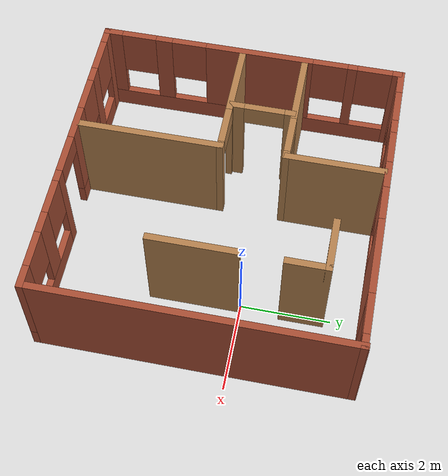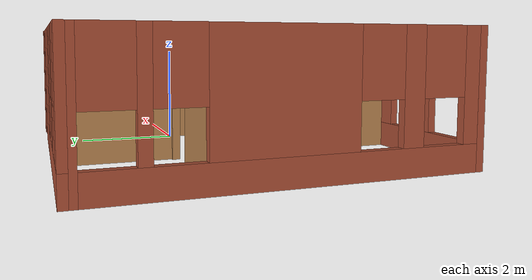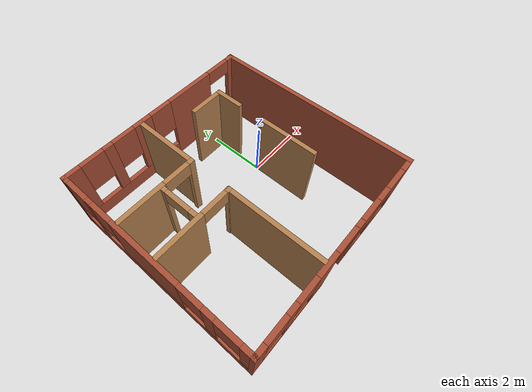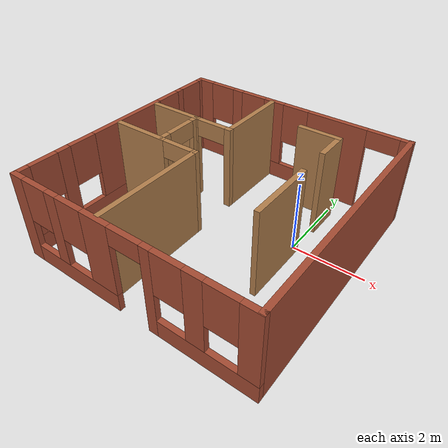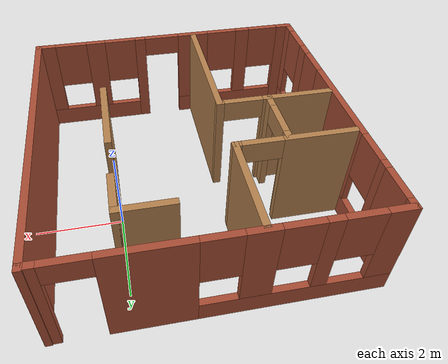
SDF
<?xml version='1.0'?>
<sdf version='1.6'>
  <model name='Building'>
    <pose frame=''>-1.78266 -0.732345 0 0 -0 0</pose>
    <link name='Wall_3'>
      <pose frame=''>0 -3.43506 0 0 -0 0</pose>
      <visual name='Wall_3_Visual_0'>
        <pose frame=''>-3.27601 0 1.25 0 -0 0</pose>
        <geometry>
          <box>
            <size>0.428142 0.15 2.5</size>
          </box>
        </geometry>
        <material>
          <script>
            <uri>file://media/materials/scripts/gazebo.material</uri>
            <name>Gazebo/Bricks</name>
          </script>
          <ambient>1 1 1 1</ambient>
        </material>
        <meta>
          <layer>0</layer>
        </meta>
      </visual>
      <collision name='Wall_3_Collision_0'>
        <geometry>
          <box>
            <size>0.428142 0.15 2.5</size>
          </box>
        </geometry>
        <pose frame=''>-3.27601 0 1.25 0 -0 0</pose>
      </collision>
      <visual name='Wall_3_Visual_1'>
        <pose frame=''>0.759822 0 1.25 0 -0 0</pose>
        <geometry>
          <box>
            <size>0.272143 0.15 2.5</size>
          </box>
        </geometry>
        <material>
          <script>
            <uri>file://media/materials/scripts/gazebo.material</uri>
            <name>Gazebo/Bricks</name>
          </script>
          <ambient>1 1 1 1</ambient>
        </material>
        <meta>
          <layer>0</layer>
        </meta>
      </visual>
      <collision name='Wall_3_Collision_1'>
        <geometry>
          <box>
            <size>0.272143 0.15 2.5</size>
          </box>
        </geometry>
        <pose frame=''>0.759822 0 1.25 0 -0 0</pose>
      </collision>
      <visual name='Wall_3_Visual_2'>
        <pose frame=''>-1.66909 0 0.25 0 -0 0</pose>
        <geometry>
          <box>
            <size>2.78568 0.15 0.5</size>
          </box>
        </geometry>
        <material>
          <script>
            <uri>file://media/materials/scripts/gazebo.material</uri>
            <name>Gazebo/Bricks</name>
          </script>
          <ambient>1 1 1 1</ambient>
        </material>
        <meta>
          <layer>0</layer>
        </meta>
      </visual>
      <collision name='Wall_3_Collision_2'>
        <geometry>
          <box>
            <size>2.78568 0.15 0.5</size>
          </box>
        </geometry>
        <pose frame=''>-1.66909 0 0.25 0 -0 0</pose>
      </collision>
      <visual name='Wall_3_Visual_3'>
        <pose frame=''>2.19299 0 0.25 0 -0 0</pose>
        <geometry>
          <box>
            <size>2.59418 0.15 0.5</size>
          </box>
        </geometry>
        <material>
          <script>
            <uri>file://media/materials/scripts/gazebo.material</uri>
            <name>Gazebo/Bricks</name>
          </script>
          <ambient>1 1 1 1</ambient>
        </material>
        <meta>
          <layer>0</layer>
        </meta>
      </visual>
      <collision name='Wall_3_Collision_3'>
        <geometry>
          <box>
            <size>2.59418 0.15 0.5</size>
          </box>
        </geometry>
        <pose frame=''>2.19299 0 0.25 0 -0 0</pose>
      </collision>
      <visual name='Wall_3_Visual_4'>
        <pose frame=''>-2.07812 0 1.5 0 -0 0</pose>
        <geometry>
          <box>
            <size>0.367635 0.15 2</size>
          </box>
        </geometry>
        <material>
          <script>
            <uri>file://media/materials/scripts/gazebo.material</uri>
            <name>Gazebo/Bricks</name>
          </script>
          <ambient>1 1 1 1</ambient>
        </material>
        <meta>
          <layer>0</layer>
        </meta>
      </visual>
      <collision name='Wall_3_Collision_4'>
        <geometry>
          <box>
            <size>0.367635 0.15 2</size>
          </box>
        </geometry>
        <pose frame=''>-2.07812 0 1.5 0 -0 0</pose>
      </collision>
      <visual name='Wall_3_Visual_5'>
        <pose frame=''>-0.685274 0 1.5 0 -0 0</pose>
        <geometry>
          <box>
            <size>0.81805 0.15 2</size>
          </box>
        </geometry>
        <material>
          <script>
            <uri>file://media/materials/scripts/gazebo.material</uri>
            <name>Gazebo/Bricks</name>
          </script>
          <ambient>1 1 1 1</ambient>
        </material>
        <meta>
          <layer>0</layer>
        </meta>
      </visual>
      <collision name='Wall_3_Collision_5'>
        <geometry>
          <box>
            <size>0.81805 0.15 2</size>
          </box>
        </geometry>
        <pose frame=''>-0.685274 0 1.5 0 -0 0</pose>
      </collision>
      <visual name='Wall_3_Visual_6'>
        <pose frame=''>-0.685274 0 1.5 0 -0 0</pose>
        <geometry>
          <box>
            <size>0.81805 0.15 2</size>
          </box>
        </geometry>
        <material>
          <script>
            <uri>file://media/materials/scripts/gazebo.material</uri>
            <name>Gazebo/Bricks</name>
          </script>
          <ambient>1 1 1 1</ambient>
        </material>
        <meta>
          <layer>0</layer>
        </meta>
      </visual>
      <collision name='Wall_3_Collision_6'>
        <geometry>
          <box>
            <size>0.81805 0.15 2</size>
          </box>
        </geometry>
        <pose frame=''>-0.685274 0 1.5 0 -0 0</pose>
      </collision>
      <visual name='Wall_3_Visual_7'>
        <pose frame=''>1.94037 0 1.5 0 -0 0</pose>
        <geometry>
          <box>
            <size>0.488948 0.15 2</size>
          </box>
        </geometry>
        <material>
          <script>
            <uri>file://media/materials/scripts/gazebo.material</uri>
            <name>Gazebo/Bricks</name>
          </script>
          <ambient>1 1 1 1</ambient>
        </material>
        <meta>
          <layer>0</layer>
        </meta>
      </visual>
      <collision name='Wall_3_Collision_7'>
        <geometry>
          <box>
            <size>0.488948 0.15 2</size>
          </box>
        </geometry>
        <pose frame=''>1.94037 0 1.5 0 -0 0</pose>
      </collision>
      <visual name='Wall_3_Visual_8'>
        <pose frame=''>3.23746 0 1.5 0 -0 0</pose>
        <geometry>
          <box>
            <size>0.505235 0.15 2</size>
          </box>
        </geometry>
        <material>
          <script>
            <uri>file://media/materials/scripts/gazebo.material</uri>
            <name>Gazebo/Bricks</name>
          </script>
          <ambient>1 1 1 1</ambient>
        </material>
        <meta>
          <layer>0</layer>
        </meta>
      </visual>
      <collision name='Wall_3_Collision_8'>
        <geometry>
          <box>
            <size>0.505235 0.15 2</size>
          </box>
        </geometry>
        <pose frame=''>3.23746 0 1.5 0 -0 0</pose>
      </collision>
      <visual name='Wall_3_Visual_9'>
        <pose frame=''>-2.66193 0 1.9 0 -0 0</pose>
        <geometry>
          <box>
            <size>0.8 0.15 1.2</size>
          </box>
        </geometry>
        <material>
          <script>
            <uri>file://media/materials/scripts/gazebo.material</uri>
            <name>Gazebo/Bricks</name>
          </script>
          <ambient>1 1 1 1</ambient>
        </material>
        <meta>
          <layer>0</layer>
        </meta>
      </visual>
      <collision name='Wall_3_Collision_9'>
        <geometry>
          <box>
            <size>0.8 0.15 1.2</size>
          </box>
        </geometry>
        <pose frame=''>-2.66193 0 1.9 0 -0 0</pose>
      </collision>
      <visual name='Wall_3_Visual_10'>
        <pose frame=''>1.29589 0 1.9 0 -0 0</pose>
        <geometry>
          <box>
            <size>0.8 0.15 1.2</size>
          </box>
        </geometry>
        <material>
          <script>
            <uri>file://media/materials/scripts/gazebo.material</uri>
            <name>Gazebo/Bricks</name>
          </script>
          <ambient>1 1 1 1</ambient>
        </material>
        <meta>
          <layer>0</layer>
        </meta>
      </visual>
      <collision name='Wall_3_Collision_10'>
        <geometry>
          <box>
            <size>0.8 0.15 1.2</size>
          </box>
        </geometry>
        <pose frame=''>1.29589 0 1.9 0 -0 0</pose>
      </collision>
      <visual name='Wall_3_Visual_11'>
        <pose frame=''>-1.4943 0 1.9 0 -0 0</pose>
        <geometry>
          <box>
            <size>0.8 0.15 1.2</size>
          </box>
        </geometry>
        <material>
          <script>
            <uri>file://media/materials/scripts/gazebo.material</uri>
            <name>Gazebo/Bricks</name>
          </script>
          <ambient>1 1 1 1</ambient>
        </material>
        <meta>
          <layer>0</layer>
        </meta>
      </visual>
      <collision name='Wall_3_Collision_11'>
        <geometry>
          <box>
            <size>0.8 0.15 1.2</size>
          </box>
        </geometry>
        <pose frame=''>-1.4943 0 1.9 0 -0 0</pose>
      </collision>
      <visual name='Wall_3_Visual_12'>
        <pose frame=''>2.58484 0 1.9 0 -0 0</pose>
        <geometry>
          <box>
            <size>0.8 0.15 1.2</size>
          </box>
        </geometry>
        <material>
          <script>
            <uri>file://media/materials/scripts/gazebo.material</uri>
            <name>Gazebo/Bricks</name>
          </script>
          <ambient>1 1 1 1</ambient>
        </material>
        <meta>
          <layer>0</layer>
        </meta>
      </visual>
      <collision name='Wall_3_Collision_12'>
        <geometry>
          <box>
            <size>0.8 0.15 1.2</size>
          </box>
        </geometry>
        <pose frame=''>2.58484 0 1.9 0 -0 0</pose>
      </collision>
      <visual name='Wall_3_Visual_13'>
        <pose frame=''>0.173751 0 2.25 0 -0 0</pose>
        <geometry>
          <box>
            <size>0.9 0.15 0.5</size>
          </box>
        </geometry>
        <material>
          <script>
            <uri>file://media/materials/scripts/gazebo.material</uri>
            <name>Gazebo/Bricks</name>
          </script>
          <ambient>1 1 1 1</ambient>
        </material>
        <meta>
          <layer>0</layer>
        </meta>
      </visual>
      <collision name='Wall_3_Collision_13'>
        <geometry>
          <box>
            <size>0.9 0.15 0.5</size>
          </box>
        </geometry>
        <pose frame=''>0.173751 0 2.25 0 -0 0</pose>
      </collision>
      <visual name='Wall_3_Visual_14'>
        <pose frame=''>0.173751 0 2.25 0 -0 0</pose>
        <geometry>
          <box>
            <size>0.9 0.15 0.5</size>
          </box>
        </geometry>
        <material>
          <script>
            <uri>file://media/materials/scripts/gazebo.material</uri>
            <name>Gazebo/Bricks</name>
          </script>
          <ambient>1 1 1 1</ambient>
        </material>
        <meta>
          <layer>0</layer>
        </meta>
      </visual>
      <collision name='Wall_3_Collision_14'>
        <geometry>
          <box>
            <size>0.9 0.15 0.5</size>
          </box>
        </geometry>
        <pose frame=''>0.173751 0 2.25 0 -0 0</pose>
      </collision>
    </link>
    <link name='Wall_5'>
      <collision name='Wall_5_Collision'>
        <geometry>
          <box>
            <size>7 0.15 2.5</size>
          </box>
        </geometry>
        <pose frame=''>0 0 1.25 0 -0 0</pose>
      </collision>
      <visual name='Wall_5_Visual'>
        <pose frame=''>0 0 1.25 0 -0 0</pose>
        <geometry>
          <box>
            <size>7 0.15 2.5</size>
          </box>
        </geometry>
        <material>
          <script>
            <uri>file://media/materials/scripts/gazebo.material</uri>
            <name>Gazebo/Bricks</name>
          </script>
          <ambient>1 1 1 1</ambient>
        </material>
        <meta>
          <layer>0</layer>
        </meta>
      </visual>
      <pose frame=''>3.41494 0.010057 0 0 -0 1.5708</pose>
    </link>
    <link name='Wall_56'>
      <pose frame=''>-1.98711 1.22189 0 0 -0 3.14159</pose>
      <visual name='Wall_56_Visual_0'>
        <pose frame=''>-1.2734 0 1.25 0 -0 0</pose>
        <geometry>
          <box>
            <size>0.203204 0.15 2.5</size>
          </box>
        </geometry>
        <material>
          <script>
            <uri>file://media/materials/scripts/gazebo.material</uri>
            <name>Gazebo/Wood</name>
          </script>
          <ambient>1 1 1 1</ambient>
        </material>
        <meta>
          <layer>0</layer>
        </meta>
      </visual>
      <collision name='Wall_56_Collision_0'>
        <geometry>
          <box>
            <size>0.203204 0.15 2.5</size>
          </box>
        </geometry>
        <pose frame=''>-1.2734 0 1.25 0 -0 0</pose>
      </collision>
      <visual name='Wall_56_Visual_1'>
        <pose frame=''>0.551602 0 1.25 0 -0 0</pose>
        <geometry>
          <box>
            <size>1.6468 0.15 2.5</size>
          </box>
        </geometry>
        <material>
          <script>
            <uri>file://media/materials/scripts/gazebo.material</uri>
            <name>Gazebo/Wood</name>
          </script>
          <ambient>1 1 1 1</ambient>
        </material>
        <meta>
          <layer>0</layer>
        </meta>
      </visual>
      <collision name='Wall_56_Collision_1'>
        <geometry>
          <box>
            <size>1.6468 0.15 2.5</size>
          </box>
        </geometry>
        <pose frame=''>0.551602 0 1.25 0 -0 0</pose>
      </collision>
      <visual name='Wall_56_Visual_2'>
        <pose frame=''>-0.721796 0 2.25 0 -0 0</pose>
        <geometry>
          <box>
            <size>0.9 0.15 0.5</size>
          </box>
        </geometry>
        <material>
          <script>
            <uri>file://media/materials/scripts/gazebo.material</uri>
            <name>Gazebo/Wood</name>
          </script>
          <ambient>1 1 1 1</ambient>
        </material>
        <meta>
          <layer>0</layer>
        </meta>
      </visual>
      <collision name='Wall_56_Collision_2'>
        <geometry>
          <box>
            <size>0.9 0.15 0.5</size>
          </box>
        </geometry>
        <pose frame=''>-0.721796 0 2.25 0 -0 0</pose>
      </collision>
    </link>
    <link name='Wall_58'>
      <collision name='Wall_58_Collision'>
        <geometry>
          <box>
            <size>3.25 0.15 2.5</size>
          </box>
        </geometry>
        <pose frame=''>0 0 1.25 0 -0 0</pose>
      </collision>
      <visual name='Wall_58_Visual'>
        <pose frame=''>0 0 1.25 0 -0 0</pose>
        <geometry>
          <box>
            <size>3.25 0.15 2.5</size>
          </box>
        </geometry>
        <material>
          <script>
            <uri>file://media/materials/scripts/gazebo.material</uri>
            <name>Gazebo/Wood</name>
          </script>
          <ambient>1 1 1 1</ambient>
        </material>
        <meta>
          <layer>0</layer>
        </meta>
      </visual>
      <pose frame=''>-0.686932 -1.76716 0 0 -0 1.5708</pose>
    </link>
    <link name='Wall_59'>
      <pose frame=''>-1.98693 -0.217155 0 0 -0 3.14159</pose>
      <visual name='Wall_59_Visual_0'>
        <pose frame=''>-1.28336 0 1.25 0 -0 0</pose>
        <geometry>
          <box>
            <size>0.183271 0.15 2.5</size>
          </box>
        </geometry>
        <material>
          <script>
            <uri>file://media/materials/scripts/gazebo.material</uri>
            <name>Gazebo/Wood</name>
          </script>
          <ambient>1 1 1 1</ambient>
        </material>
        <meta>
          <layer>0</layer>
        </meta>
      </visual>
      <collision name='Wall_59_Collision_0'>
        <geometry>
          <box>
            <size>0.183271 0.15 2.5</size>
          </box>
        </geometry>
        <pose frame=''>-1.28336 0 1.25 0 -0 0</pose>
      </collision>
      <visual name='Wall_59_Visual_1'>
        <pose frame=''>0.541636 0 1.25 0 -0 0</pose>
        <geometry>
          <box>
            <size>1.66673 0.15 2.5</size>
          </box>
        </geometry>
        <material>
          <script>
            <uri>file://media/materials/scripts/gazebo.material</uri>
            <name>Gazebo/Wood</name>
          </script>
          <ambient>1 1 1 1</ambient>
        </material>
        <meta>
          <layer>0</layer>
        </meta>
      </visual>
      <collision name='Wall_59_Collision_1'>
        <geometry>
          <box>
            <size>1.66673 0.15 2.5</size>
          </box>
        </geometry>
        <pose frame=''>0.541636 0 1.25 0 -0 0</pose>
      </collision>
      <visual name='Wall_59_Visual_2'>
        <pose frame=''>-0.741729 0 2.25 0 -0 0</pose>
        <geometry>
          <box>
            <size>0.9 0.15 0.5</size>
          </box>
        </geometry>
        <material>
          <script>
            <uri>file://media/materials/scripts/gazebo.material</uri>
            <name>Gazebo/Wood</name>
          </script>
          <ambient>1 1 1 1</ambient>
        </material>
        <meta>
          <layer>0</layer>
        </meta>
      </visual>
      <collision name='Wall_59_Collision_2'>
        <geometry>
          <box>
            <size>0.9 0.15 0.5</size>
          </box>
        </geometry>
        <pose frame=''>-0.741729 0 2.25 0 -0 0</pose>
      </collision>
    </link>
    <link name='Wall_6'>
      <pose frame=''>0 3.41494 0 0 -0 3.14159</pose>
      <visual name='Wall_6_Visual_0'>
        <pose frame=''>-3.32312 0 1.25 0 -0 0</pose>
        <geometry>
          <box>
            <size>0.333922 0.15 2.5</size>
          </box>
        </geometry>
        <material>
          <script>
            <uri>file://media/materials/scripts/gazebo.material</uri>
            <name>Gazebo/Bricks</name>
          </script>
          <ambient>1 1 1 1</ambient>
        </material>
        <meta>
          <layer>0</layer>
        </meta>
      </visual>
      <collision name='Wall_6_Collision_0'>
        <geometry>
          <box>
            <size>0.333922 0.15 2.5</size>
          </box>
        </geometry>
        <pose frame=''>-3.32312 0 1.25 0 -0 0</pose>
      </collision>
      <visual name='Wall_6_Visual_1'>
        <pose frame=''>-1.37704 0 1.25 0 -0 0</pose>
        <geometry>
          <box>
            <size>1.75822 0.15 2.5</size>
          </box>
        </geometry>
        <material>
          <script>
            <uri>file://media/materials/scripts/gazebo.material</uri>
            <name>Gazebo/Bricks</name>
          </script>
          <ambient>1 1 1 1</ambient>
        </material>
        <meta>
          <layer>0</layer>
        </meta>
      </visual>
      <collision name='Wall_6_Collision_1'>
        <geometry>
          <box>
            <size>1.75822 0.15 2.5</size>
          </box>
        </geometry>
        <pose frame=''>-1.37704 0 1.25 0 -0 0</pose>
      </collision>
      <visual name='Wall_6_Visual_2'>
        <pose frame=''>1.49607 0 0.25 0 -0 0</pose>
        <geometry>
          <box>
            <size>3.98801 0.15 0.5</size>
          </box>
        </geometry>
        <material>
          <script>
            <uri>file://media/materials/scripts/gazebo.material</uri>
            <name>Gazebo/Bricks</name>
          </script>
          <ambient>1 1 1 1</ambient>
        </material>
        <meta>
          <layer>0</layer>
        </meta>
      </visual>
      <collision name='Wall_6_Collision_2'>
        <geometry>
          <box>
            <size>3.98801 0.15 0.5</size>
          </box>
        </geometry>
        <pose frame=''>1.49607 0 0.25 0 -0 0</pose>
      </collision>
      <visual name='Wall_6_Visual_3'>
        <pose frame=''>0.629946 0 1.5 0 -0 0</pose>
        <geometry>
          <box>
            <size>0.655753 0.15 2</size>
          </box>
        </geometry>
        <material>
          <script>
            <uri>file://media/materials/scripts/gazebo.material</uri>
            <name>Gazebo/Bricks</name>
          </script>
          <ambient>1 1 1 1</ambient>
        </material>
        <meta>
          <layer>0</layer>
        </meta>
      </visual>
      <collision name='Wall_6_Collision_3'>
        <geometry>
          <box>
            <size>0.655753 0.15 2</size>
          </box>
        </geometry>
        <pose frame=''>0.629946 0 1.5 0 -0 0</pose>
      </collision>
      <visual name='Wall_6_Visual_4'>
        <pose frame=''>1.92648 0 1.5 0 -0 0</pose>
        <geometry>
          <box>
            <size>0.337307 0.15 2</size>
          </box>
        </geometry>
        <material>
          <script>
            <uri>file://media/materials/scripts/gazebo.material</uri>
            <name>Gazebo/Bricks</name>
          </script>
          <ambient>1 1 1 1</ambient>
        </material>
        <meta>
          <layer>0</layer>
        </meta>
      </visual>
      <collision name='Wall_6_Collision_4'>
        <geometry>
          <box>
            <size>0.337307 0.15 2</size>
          </box>
        </geometry>
        <pose frame=''>1.92648 0 1.5 0 -0 0</pose>
      </collision>
      <visual name='Wall_6_Visual_5'>
        <pose frame=''>3.1926 0 1.5 0 -0 0</pose>
        <geometry>
          <box>
            <size>0.594947 0.15 2</size>
          </box>
        </geometry>
        <material>
          <script>
            <uri>file://media/materials/scripts/gazebo.material</uri>
            <name>Gazebo/Bricks</name>
          </script>
          <ambient>1 1 1 1</ambient>
        </material>
        <meta>
          <layer>0</layer>
        </meta>
      </visual>
      <collision name='Wall_6_Collision_5'>
        <geometry>
          <box>
            <size>0.594947 0.15 2</size>
          </box>
        </geometry>
        <pose frame=''>3.1926 0 1.5 0 -0 0</pose>
      </collision>
      <visual name='Wall_6_Visual_6'>
        <pose frame=''>-0.09793 0 1.9 0 -0 0</pose>
        <geometry>
          <box>
            <size>0.8 0.15 1.2</size>
          </box>
        </geometry>
        <material>
          <script>
            <uri>file://media/materials/scripts/gazebo.material</uri>
            <name>Gazebo/Bricks</name>
          </script>
          <ambient>1 1 1 1</ambient>
        </material>
        <meta>
          <layer>0</layer>
        </meta>
      </visual>
      <collision name='Wall_6_Collision_6'>
        <geometry>
          <box>
            <size>0.8 0.15 1.2</size>
          </box>
        </geometry>
        <pose frame=''>-0.09793 0 1.9 0 -0 0</pose>
      </collision>
      <visual name='Wall_6_Visual_7'>
        <pose frame=''>1.35782 0 1.9 0 -0 0</pose>
        <geometry>
          <box>
            <size>0.8 0.15 1.2</size>
          </box>
        </geometry>
        <material>
          <script>
            <uri>file://media/materials/scripts/gazebo.material</uri>
            <name>Gazebo/Bricks</name>
          </script>
          <ambient>1 1 1 1</ambient>
        </material>
        <meta>
          <layer>0</layer>
        </meta>
      </visual>
      <collision name='Wall_6_Collision_7'>
        <geometry>
          <box>
            <size>0.8 0.15 1.2</size>
          </box>
        </geometry>
        <pose frame=''>1.35782 0 1.9 0 -0 0</pose>
      </collision>
      <visual name='Wall_6_Visual_8'>
        <pose frame=''>2.49513 0 1.9 0 -0 0</pose>
        <geometry>
          <box>
            <size>0.8 0.15 1.2</size>
          </box>
        </geometry>
        <material>
          <script>
            <uri>file://media/materials/scripts/gazebo.material</uri>
            <name>Gazebo/Bricks</name>
          </script>
          <ambient>1 1 1 1</ambient>
        </material>
        <meta>
          <layer>0</layer>
        </meta>
      </visual>
      <collision name='Wall_6_Collision_8'>
        <geometry>
          <box>
            <size>0.8 0.15 1.2</size>
          </box>
        </geometry>
        <pose frame=''>2.49513 0 1.9 0 -0 0</pose>
      </collision>
      <visual name='Wall_6_Visual_9'>
        <pose frame=''>-2.70615 0 2.25 0 -0 0</pose>
        <geometry>
          <box>
            <size>0.9 0.15 0.5</size>
          </box>
        </geometry>
        <material>
          <script>
            <uri>file://media/materials/scripts/gazebo.material</uri>
            <name>Gazebo/Bricks</name>
          </script>
          <ambient>1 1 1 1</ambient>
        </material>
        <meta>
          <layer>0</layer>
        </meta>
      </visual>
      <collision name='Wall_6_Collision_9'>
        <geometry>
          <box>
            <size>0.9 0.15 0.5</size>
          </box>
        </geometry>
        <pose frame=''>-2.70615 0 2.25 0 -0 0</pose>
      </collision>
    </link>
    <link name='Wall_63'>
      <collision name='Wall_63_Collision'>
        <geometry>
          <box>
            <size>2.25 0.15 2.5</size>
          </box>
        </geometry>
        <pose frame=''>0 0 1.25 0 -0 0</pose>
      </collision>
      <visual name='Wall_63_Visual'>
        <pose frame=''>0 0 1.25 0 -0 0</pose>
        <geometry>
          <box>
            <size>2.25 0.15 2.5</size>
          </box>
        </geometry>
        <material>
          <script>
            <uri>file://media/materials/scripts/gazebo.material</uri>
            <name>Gazebo/Wood</name>
          </script>
          <ambient>1 1 1 1</ambient>
        </material>
        <meta>
          <layer>0</layer>
        </meta>
      </visual>
      <pose frame=''>-0.687113 2.27189 0 0 -0 1.5708</pose>
    </link>
    <link name='Wall_65'>
      <pose frame=''>-1.84366 0.501814 0 0 0 -1.5708</pose>
      <visual name='Wall_65_Visual_0'>
        <pose frame=''>-0.625721 0 1.25 0 -0 0</pose>
        <geometry>
          <box>
            <size>0.248559 0.15 2.5</size>
          </box>
        </geometry>
        <material>
          <script>
            <uri>file://media/materials/scripts/gazebo.material</uri>
            <name>Gazebo/Wood</name>
          </script>
          <ambient>1 1 1 1</ambient>
        </material>
        <meta>
          <layer>0</layer>
        </meta>
      </visual>
      <collision name='Wall_65_Collision_0'>
        <geometry>
          <box>
            <size>0.248559 0.15 2.5</size>
          </box>
        </geometry>
        <pose frame=''>-0.625721 0 1.25 0 -0 0</pose>
      </collision>
      <visual name='Wall_65_Visual_1'>
        <pose frame=''>0.574279 0 1.25 0 -0 0</pose>
        <geometry>
          <box>
            <size>0.351441 0.15 2.5</size>
          </box>
        </geometry>
        <material>
          <script>
            <uri>file://media/materials/scripts/gazebo.material</uri>
            <name>Gazebo/Wood</name>
          </script>
          <ambient>1 1 1 1</ambient>
        </material>
        <meta>
          <layer>0</layer>
        </meta>
      </visual>
      <collision name='Wall_65_Collision_1'>
        <geometry>
          <box>
            <size>0.351441 0.15 2.5</size>
          </box>
        </geometry>
        <pose frame=''>0.574279 0 1.25 0 -0 0</pose>
      </collision>
      <visual name='Wall_65_Visual_2'>
        <pose frame=''>-0.051441 0 2.25 0 -0 0</pose>
        <geometry>
          <box>
            <size>0.9 0.15 0.5</size>
          </box>
        </geometry>
        <material>
          <script>
            <uri>file://media/materials/scripts/gazebo.material</uri>
            <name>Gazebo/Wood</name>
          </script>
          <ambient>1 1 1 1</ambient>
        </material>
        <meta>
          <layer>0</layer>
        </meta>
      </visual>
      <collision name='Wall_65_Collision_2'>
        <geometry>
          <box>
            <size>0.9 0.15 0.5</size>
          </box>
        </geometry>
        <pose frame=''>-0.051441 0 2.25 0 -0 0</pose>
      </collision>
    </link>
    <link name='Wall_67'>
      <collision name='Wall_67_Collision'>
        <geometry>
          <box>
            <size>1.25 0.15 2.5</size>
          </box>
        </geometry>
        <pose frame=''>0 0 1.25 0 -0 0</pose>
      </collision>
      <visual name='Wall_67_Visual'>
        <pose frame=''>0 0 1.25 0 -0 0</pose>
        <geometry>
          <box>
            <size>1.25 0.15 2.5</size>
          </box>
        </geometry>
        <material>
          <script>
            <uri>file://media/materials/scripts/gazebo.material</uri>
            <name>Gazebo/Wood</name>
          </script>
          <ambient>1 1 1 1</ambient>
        </material>
        <meta>
          <layer>0</layer>
        </meta>
      </visual>
      <pose frame=''>1.30703 2.51518 0 0 -0 0</pose>
    </link>
    <link name='Wall_68'>
      <collision name='Wall_68_Collision'>
        <geometry>
          <box>
            <size>1 0.15 2.5</size>
          </box>
        </geometry>
        <pose frame=''>0 0 1.25 0 -0 0</pose>
      </collision>
      <visual name='Wall_68_Visual'>
        <pose frame=''>0 0 1.25 0 -0 0</pose>
        <geometry>
          <box>
            <size>1 0.15 2.5</size>
          </box>
        </geometry>
        <material>
          <script>
            <uri>file://media/materials/scripts/gazebo.material</uri>
            <name>Gazebo/Wood</name>
          </script>
          <ambient>1 1 1 1</ambient>
        </material>
        <meta>
          <layer>0</layer>
        </meta>
      </visual>
      <pose frame=''>1.85703 2.09018 0 0 0 -1.5708</pose>
    </link>
    <link name='Wall_7'>
      <pose frame=''>-3.41494 -0.010057 0 0 0 -1.5708</pose>
      <visual name='Wall_7_Visual_0'>
        <pose frame=''>-3.36514 0 1.25 0 -0 0</pose>
        <geometry>
          <box>
            <size>0.269724 0.15 2.5</size>
          </box>
        </geometry>
        <material>
          <script>
            <uri>file://media/materials/scripts/gazebo.material</uri>
            <name>Gazebo/Bricks</name>
          </script>
          <ambient>1 1 1 1</ambient>
        </material>
        <meta>
          <layer>0</layer>
        </meta>
      </visual>
      <collision name='Wall_7_Collision_0'>
        <geometry>
          <box>
            <size>0.269724 0.15 2.5</size>
          </box>
        </geometry>
        <pose frame=''>-3.36514 0 1.25 0 -0 0</pose>
      </collision>
      <visual name='Wall_7_Visual_1'>
        <pose frame=''>0.134862 0 0.25 0 -0 0</pose>
        <geometry>
          <box>
            <size>6.73028 0.15 0.5</size>
          </box>
        </geometry>
        <material>
          <script>
            <uri>file://media/materials/scripts/gazebo.material</uri>
            <name>Gazebo/Bricks</name>
          </script>
          <ambient>1 1 1 1</ambient>
        </material>
        <meta>
          <layer>0</layer>
        </meta>
      </visual>
      <collision name='Wall_7_Collision_1'>
        <geometry>
          <box>
            <size>6.73028 0.15 0.5</size>
          </box>
        </geometry>
        <pose frame=''>0.134862 0 0.25 0 -0 0</pose>
      </collision>
      <visual name='Wall_7_Visual_2'>
        <pose frame=''>-2.32078 0 1.5 0 -0 0</pose>
        <geometry>
          <box>
            <size>0.218986 0.15 2</size>
          </box>
        </geometry>
        <material>
          <script>
            <uri>file://media/materials/scripts/gazebo.material</uri>
            <name>Gazebo/Bricks</name>
          </script>
          <ambient>1 1 1 1</ambient>
        </material>
        <meta>
          <layer>0</layer>
        </meta>
      </visual>
      <collision name='Wall_7_Collision_2'>
        <geometry>
          <box>
            <size>0.218986 0.15 2</size>
          </box>
        </geometry>
        <pose frame=''>-2.32078 0 1.5 0 -0 0</pose>
      </collision>
      <visual name='Wall_7_Visual_3'>
        <pose frame=''>-0.168745 0 1.5 0 -0 0</pose>
        <geometry>
          <box>
            <size>2.48509 0.15 2</size>
          </box>
        </geometry>
        <material>
          <script>
            <uri>file://media/materials/scripts/gazebo.material</uri>
            <name>Gazebo/Bricks</name>
          </script>
          <ambient>1 1 1 1</ambient>
        </material>
        <meta>
          <layer>0</layer>
        </meta>
      </visual>
      <collision name='Wall_7_Collision_3'>
        <geometry>
          <box>
            <size>2.48509 0.15 2</size>
          </box>
        </geometry>
        <pose frame=''>-0.168745 0 1.5 0 -0 0</pose>
      </collision>
      <visual name='Wall_7_Visual_4'>
        <pose frame=''>2.06694 0 1.5 0 -0 0</pose>
        <geometry>
          <box>
            <size>0.386282 0.15 2</size>
          </box>
        </geometry>
        <material>
          <script>
            <uri>file://media/materials/scripts/gazebo.material</uri>
            <name>Gazebo/Bricks</name>
          </script>
          <ambient>1 1 1 1</ambient>
        </material>
        <meta>
          <layer>0</layer>
        </meta>
      </visual>
      <collision name='Wall_7_Collision_4'>
        <geometry>
          <box>
            <size>0.386282 0.15 2</size>
          </box>
        </geometry>
        <pose frame=''>2.06694 0 1.5 0 -0 0</pose>
      </collision>
      <visual name='Wall_7_Visual_5'>
        <pose frame=''>3.28004 0 1.5 0 -0 0</pose>
        <geometry>
          <box>
            <size>0.439918 0.15 2</size>
          </box>
        </geometry>
        <material>
          <script>
            <uri>file://media/materials/scripts/gazebo.material</uri>
            <name>Gazebo/Bricks</name>
          </script>
          <ambient>1 1 1 1</ambient>
        </material>
        <meta>
          <layer>0</layer>
        </meta>
      </visual>
      <collision name='Wall_7_Collision_5'>
        <geometry>
          <box>
            <size>0.439918 0.15 2</size>
          </box>
        </geometry>
        <pose frame=''>3.28004 0 1.5 0 -0 0</pose>
      </collision>
      <visual name='Wall_7_Visual_6'>
        <pose frame=''>-2.83028 0 1.9 0 -0 0</pose>
        <geometry>
          <box>
            <size>0.8 0.15 1.2</size>
          </box>
        </geometry>
        <material>
          <script>
            <uri>file://media/materials/scripts/gazebo.material</uri>
            <name>Gazebo/Bricks</name>
          </script>
          <ambient>1 1 1 1</ambient>
        </material>
        <meta>
          <layer>0</layer>
        </meta>
      </visual>
      <collision name='Wall_7_Collision_6'>
        <geometry>
          <box>
            <size>0.8 0.15 1.2</size>
          </box>
        </geometry>
        <pose frame=''>-2.83028 0 1.9 0 -0 0</pose>
      </collision>
      <visual name='Wall_7_Visual_7'>
        <pose frame=''>-1.81129 0 1.9 0 -0 0</pose>
        <geometry>
          <box>
            <size>0.8 0.15 1.2</size>
          </box>
        </geometry>
        <material>
          <script>
            <uri>file://media/materials/scripts/gazebo.material</uri>
            <name>Gazebo/Bricks</name>
          </script>
          <ambient>1 1 1 1</ambient>
        </material>
        <meta>
          <layer>0</layer>
        </meta>
      </visual>
      <collision name='Wall_7_Collision_7'>
        <geometry>
          <box>
            <size>0.8 0.15 1.2</size>
          </box>
        </geometry>
        <pose frame=''>-1.81129 0 1.9 0 -0 0</pose>
      </collision>
      <visual name='Wall_7_Visual_8'>
        <pose frame=''>1.4738 0 1.9 0 -0 0</pose>
        <geometry>
          <box>
            <size>0.8 0.15 1.2</size>
          </box>
        </geometry>
        <material>
          <script>
            <uri>file://media/materials/scripts/gazebo.material</uri>
            <name>Gazebo/Bricks</name>
          </script>
          <ambient>1 1 1 1</ambient>
        </material>
        <meta>
          <layer>0</layer>
        </meta>
      </visual>
      <collision name='Wall_7_Collision_8'>
        <geometry>
          <box>
            <size>0.8 0.15 1.2</size>
          </box>
        </geometry>
        <pose frame=''>1.4738 0 1.9 0 -0 0</pose>
      </collision>
      <visual name='Wall_7_Visual_9'>
        <pose frame=''>2.66008 0 1.9 0 -0 0</pose>
        <geometry>
          <box>
            <size>0.8 0.15 1.2</size>
          </box>
        </geometry>
        <material>
          <script>
            <uri>file://media/materials/scripts/gazebo.material</uri>
            <name>Gazebo/Bricks</name>
          </script>
          <ambient>1 1 1 1</ambient>
        </material>
        <meta>
          <layer>0</layer>
        </meta>
      </visual>
      <collision name='Wall_7_Collision_9'>
        <geometry>
          <box>
            <size>0.8 0.15 1.2</size>
          </box>
        </geometry>
        <pose frame=''>2.66008 0 1.9 0 -0 0</pose>
      </collision>
    </link>
    <link name='Wall_70'>
      <collision name='Wall_70_Collision'>
        <geometry>
          <box>
            <size>2 0.15 2.5</size>
          </box>
        </geometry>
        <pose frame=''>0 0 1.25 0 -0 0</pose>
      </collision>
      <visual name='Wall_70_Visual'>
        <pose frame=''>0 0 1.25 0 -0 0</pose>
        <geometry>
          <box>
            <size>2 0.15 2.5</size>
          </box>
        </geometry>
        <material>
          <script>
            <uri>file://media/materials/scripts/gazebo.material</uri>
            <name>Gazebo/Wood</name>
          </script>
          <ambient>1 1 1 1</ambient>
        </material>
        <meta>
          <layer>0</layer>
        </meta>
      </visual>
      <pose frame=''>1.85206 -0.295701 0 0 0 -1.5708</pose>
    </link>
    <static>1</static>
  </model>
</sdf>
